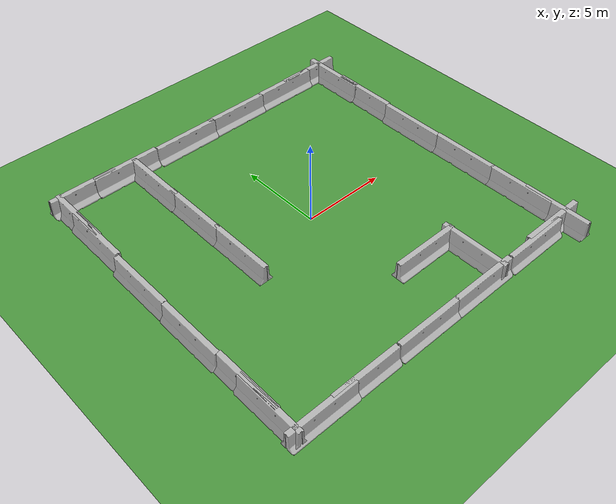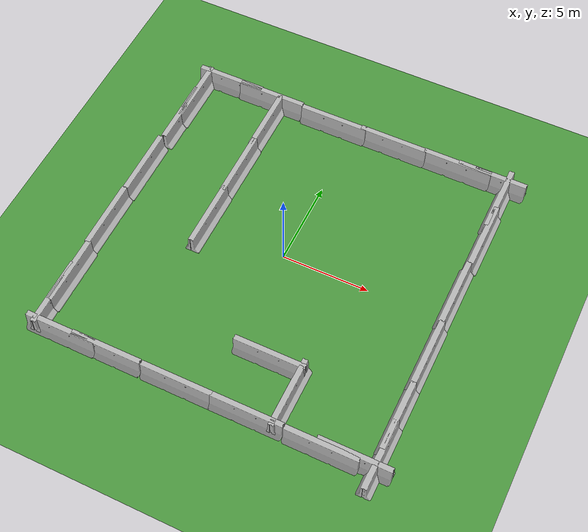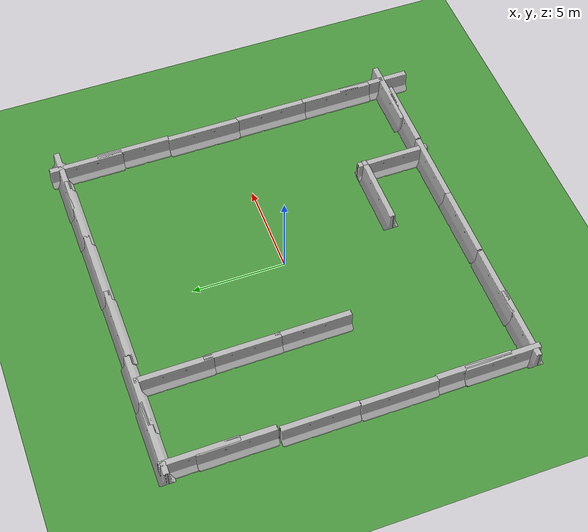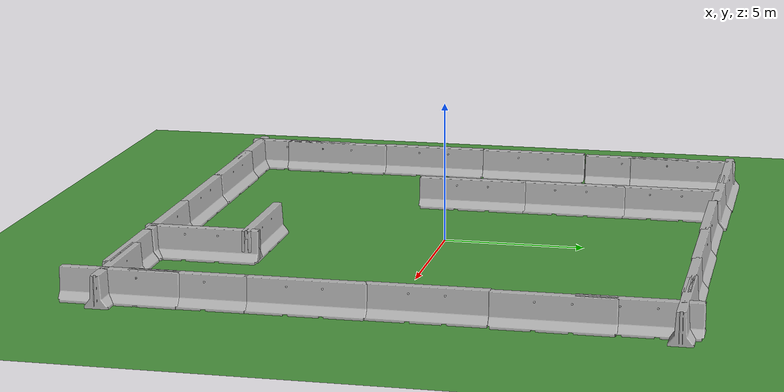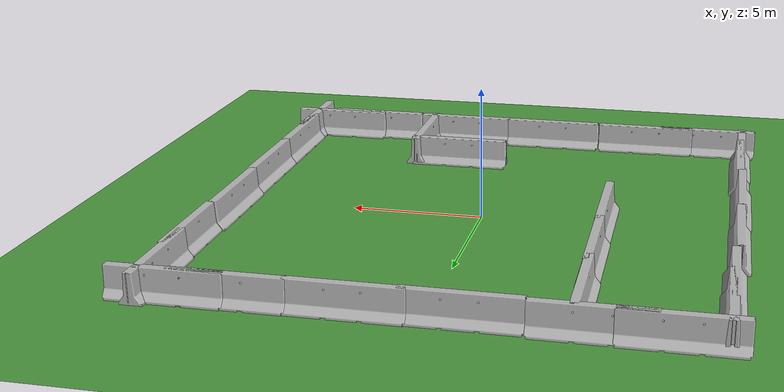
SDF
<sdf version="1.7">
 <world name="default">
  <light name="sun" type="directional">
   <pose>0 0 10 0 -0 0</pose>
   <diffuse>0.8 0.8 0.8 1</diffuse>
   <specular>0.2 0.2 0.2 1</specular>
   <attenuation>
    <range>1000</range>
    <constant>0.9</constant>
    <linear>0.01</linear>
    <quadratic>0.001</quadratic>
   </attenuation>
   <direction>-0.5 0.1 -0.9</direction>
   <spot><inner_angle>0</inner_angle><outer_angle>0</outer_angle><falloff>0</falloff></spot>
  </light>
  <model name="ground_plane">
   <static>1</static>
   <link name="link">
    <collision name="collision">
     <geometry><plane><normal>0 0 1</normal><size>100 100</size></plane></geometry>
     <surface><friction><ode><mu>100</mu><mu2>50</mu2></ode></friction></surface>
    </collision>
    <visual name="visual">
     <cast_shadows>0</cast_shadows>
     <geometry><plane><normal>0 0 1</normal><size>20 20</size></plane></geometry>
     <material>
      <script>
       <uri>model://jardim/materials/scripts</uri>
       <uri>model://jardim/materials/texture</uri>
       <name>vrc/grass</name>
      </script>
     </material>
    </visual>
   </link>
  </model>
  <gravity>0 0 -9.8</gravity>
  <magnetic_field>6e-06 2.3e-05 -4.2e-05</magnetic_field>
  <atmosphere type="adiabatic"/>
  <physics name="default_physics" default="0" type="ode">
   <max_step_size>0.001</max_step_size>
   <real_time_factor>1</real_time_factor>
   <real_time_update_rate>1000</real_time_update_rate>
  </physics>
  <scene><ambient>0.4 0.4 0.4 1</ambient><background>0.7 0.7 0.7 1</background><shadows>1</shadows></scene>
  <spherical_coordinates>
   <surface_model>EARTH_WGS84</surface_model>
   <latitude_deg>0</latitude_deg>
   <longitude_deg>0</longitude_deg>
   <elevation>0</elevation>
   <heading_deg>0</heading_deg>
  </spherical_coordinates>
  <model name="jersey_barrier">
   <static>1</static>
   <link name="link">
    <visual name="visual">
     <geometry><mesh><uri>model://jersey_barrier/meshes/jersey_barrier.dae</uri></mesh></geometry>
    </visual>
    <collision name="upright">
     <pose>0 0 0.5715 0 -0 0</pose>
     <geometry><box><size>4.06542 0.3063 1.143</size></box></geometry>
    </collision>
    <collision name="base">
     <pose>0 0 0.032258 0 -0 0</pose>
     <geometry><box><size>4.06542 0.8107 0.064516</size></box></geometry>
    </collision>
    <collision name="base2">
     <pose>0 0 0.1 0 -0 0</pose>
     <geometry><box><size>4.06542 0.65 0.1</size></box></geometry>
    </collision>
    <collision name="base3">
     <pose>0 0 0.2 0 -0 0</pose>
     <geometry><box><size>4.06542 0.5 0.1</size></box></geometry>
    </collision>
    <collision name="left-angle">
     <pose>0 -0.224 0.2401 0.9 -0 0</pose>
     <geometry><box><size>4.06542 0.5 0.064516</size></box></geometry>
    </collision>
    <collision name="right-angle">
     <pose>0 0.224 0.2401 -0.9 0 0</pose>
     <geometry><box><size>4.06542 0.5 0.064516</size></box></geometry>
    </collision>
   </link>
   <pose>-5.29386 9.38918 0 0 -0 0</pose>
  </model>
  <model name="jersey_barrier_clone">
   <static>1</static>
   <link name="link">
    <visual name="visual">
     <geometry><mesh><uri>model://jersey_barrier/meshes/jersey_barrier.dae</uri></mesh></geometry>
    </visual>
    <collision name="upright">
     <pose>0 0 0.5715 0 -0 0</pose>
     <geometry><box><size>4.06542 0.3063 1.143</size></box></geometry>
    </collision>
    <collision name="base">
     <pose>0 0 0.032258 0 -0 0</pose>
     <geometry><box><size>4.06542 0.8107 0.064516</size></box></geometry>
    </collision>
    <collision name="base2">
     <pose>0 0 0.1 0 -0 0</pose>
     <geometry><box><size>4.06542 0.65 0.1</size></box></geometry>
    </collision>
    <collision name="base3">
     <pose>0 0 0.2 0 -0 0</pose>
     <geometry><box><size>4.06542 0.5 0.1</size></box></geometry>
    </collision>
    <collision name="left-angle">
     <pose>0 -0.224 0.2401 0.9 -0 0</pose>
     <geometry><box><size>4.06542 0.5 0.064516</size></box></geometry>
    </collision>
    <collision name="right-angle">
     <pose>0 0.224 0.2401 -0.9 0 0</pose>
     <geometry><box><size>4.06542 0.5 0.064516</size></box></geometry>
    </collision>
   </link>
   <pose>-1.23089 9.28673 0 0 -0 0</pose>
  </model>
  <model name="jersey_barrier_clone_0">
   <static>1</static>
   <link name="link">
    <visual name="visual">
     <geometry><mesh><uri>model://jersey_barrier/meshes/jersey_barrier.dae</uri></mesh></geometry>
    </visual>
    <collision name="upright">
     <pose>0 0 0.5715 0 -0 0</pose>
     <geometry><box><size>4.06542 0.3063 1.143</size></box></geometry>
    </collision>
    <collision name="base">
     <pose>0 0 0.032258 0 -0 0</pose>
     <geometry><box><size>4.06542 0.8107 0.064516</size></box></geometry>
    </collision>
    <collision name="base2">
     <pose>0 0 0.1 0 -0 0</pose>
     <geometry><box><size>4.06542 0.65 0.1</size></box></geometry>
    </collision>
    <collision name="base3">
     <pose>0 0 0.2 0 -0 0</pose>
     <geometry><box><size>4.06542 0.5 0.1</size></box></geometry>
    </collision>
    <collision name="left-angle">
     <pose>0 -0.224 0.2401 0.9 -0 0</pose>
     <geometry><box><size>4.06542 0.5 0.064516</size></box></geometry>
    </collision>
    <collision name="right-angle">
     <pose>0 0.224 0.2401 -0.9 0 0</pose>
     <geometry><box><size>4.06542 0.5 0.064516</size></box></geometry>
    </collision>
   </link>
   <pose>2.47545 9.3304 0 0 -0 0</pose>
  </model>
  <model name="jersey_barrier_clone_1">
   <static>1</static>
   <link name="link">
    <visual name="visual">
     <geometry><mesh><uri>model://jersey_barrier/meshes/jersey_barrier.dae</uri></mesh></geometry>
    </visual>
    <collision name="upright">
     <pose>0 0 0.5715 0 -0 0</pose>
     <geometry><box><size>4.06542 0.3063 1.143</size></box></geometry>
    </collision>
    <collision name="base">
     <pose>0 0 0.032258 0 -0 0</pose>
     <geometry><box><size>4.06542 0.8107 0.064516</size></box></geometry>
    </collision>
    <collision name="base2">
     <pose>0 0 0.1 0 -0 0</pose>
     <geometry><box><size>4.06542 0.65 0.1</size></box></geometry>
    </collision>
    <collision name="base3">
     <pose>0 0 0.2 0 -0 0</pose>
     <geometry><box><size>4.06542 0.5 0.1</size></box></geometry>
    </collision>
    <collision name="left-angle">
     <pose>0 -0.224 0.2401 0.9 -0 0</pose>
     <geometry><box><size>4.06542 0.5 0.064516</size></box></geometry>
    </collision>
    <collision name="right-angle">
     <pose>0 0.224 0.2401 -0.9 0 0</pose>
     <geometry><box><size>4.06542 0.5 0.064516</size></box></geometry>
    </collision>
   </link>
   <pose>6.37079 9.36014 0 0 -0 0</pose>
  </model>
  <model name="jersey_barrier_clone_3">
   <static>1</static>
   <link name="link">
    <visual name="visual">
     <geometry><mesh><uri>model://jersey_barrier/meshes/jersey_barrier.dae</uri></mesh></geometry>
    </visual>
    <collision name="upright">
     <pose>0 0 0.5715 0 -0 0</pose>
     <geometry><box><size>4.06542 0.3063 1.143</size></box></geometry>
    </collision>
    <collision name="base">
     <pose>0 0 0.032258 0 -0 0</pose>
     <geometry><box><size>4.06542 0.8107 0.064516</size></box></geometry>
    </collision>
    <collision name="base2">
     <pose>0 0 0.1 0 -0 0</pose>
     <geometry><box><size>4.06542 0.65 0.1</size></box></geometry>
    </collision>
    <collision name="base3">
     <pose>0 0 0.2 0 -0 0</pose>
     <geometry><box><size>4.06542 0.5 0.1</size></box></geometry>
    </collision>
    <collision name="left-angle">
     <pose>0 -0.224 0.2401 0.9 -0 0</pose>
     <geometry><box><size>4.06542 0.5 0.064516</size></box></geometry>
    </collision>
    <collision name="right-angle">
     <pose>0 0.224 0.2401 -0.9 0 0</pose>
     <geometry><box><size>4.06542 0.5 0.064516</size></box></geometry>
    </collision>
   </link>
   <pose>9.44656 5.35522 0 0 0 -1.56865</pose>
  </model>
  <model name="jersey_barrier_clone_3_clone">
   <static>1</static>
   <link name="link">
    <visual name="visual">
     <geometry><mesh><uri>model://jersey_barrier/meshes/jersey_barrier.dae</uri></mesh></geometry>
    </visual>
    <collision name="upright">
     <pose>0 0 0.5715 0 -0 0</pose>
     <geometry><box><size>4.06542 0.3063 1.143</size></box></geometry>
    </collision>
    <collision name="base">
     <pose>0 0 0.032258 0 -0 0</pose>
     <geometry><box><size>4.06542 0.8107 0.064516</size></box></geometry>
    </collision>
    <collision name="base2">
     <pose>0 0 0.1 0 -0 0</pose>
     <geometry><box><size>4.06542 0.65 0.1</size></box></geometry>
    </collision>
    <collision name="base3">
     <pose>0 0 0.2 0 -0 0</pose>
     <geometry><box><size>4.06542 0.5 0.1</size></box></geometry>
    </collision>
    <collision name="left-angle">
     <pose>0 -0.224 0.2401 0.9 -0 0</pose>
     <geometry><box><size>4.06542 0.5 0.064516</size></box></geometry>
    </collision>
    <collision name="right-angle">
     <pose>0 0.224 0.2401 -0.9 0 0</pose>
     <geometry><box><size>4.06542 0.5 0.064516</size></box></geometry>
    </collision>
   </link>
   <pose>9.3727 1.33119 0 0 0 -1.56865</pose>
  </model>
  <model name="jersey_barrier_clone_3_clone_0">
   <static>1</static>
   <link name="link">
    <visual name="visual">
     <geometry><mesh><uri>model://jersey_barrier/meshes/jersey_barrier.dae</uri></mesh></geometry>
    </visual>
    <collision name="upright">
     <pose>0 0 0.5715 0 -0 0</pose>
     <geometry><box><size>4.06542 0.3063 1.143</size></box></geometry>
    </collision>
    <collision name="base">
     <pose>0 0 0.032258 0 -0 0</pose>
     <geometry><box><size>4.06542 0.8107 0.064516</size></box></geometry>
    </collision>
    <collision name="base2">
     <pose>0 0 0.1 0 -0 0</pose>
     <geometry><box><size>4.06542 0.65 0.1</size></box></geometry>
    </collision>
    <collision name="base3">
     <pose>0 0 0.2 0 -0 0</pose>
     <geometry><box><size>4.06542 0.5 0.1</size></box></geometry>
    </collision>
    <collision name="left-angle">
     <pose>0 -0.224 0.2401 0.9 -0 0</pose>
     <geometry><box><size>4.06542 0.5 0.064516</size></box></geometry>
    </collision>
    <collision name="right-angle">
     <pose>0 0.224 0.2401 -0.9 0 0</pose>
     <geometry><box><size>4.06542 0.5 0.064516</size></box></geometry>
    </collision>
   </link>
   <pose>9.4315 -2.6268 0 0 0 -1.56865</pose>
  </model>
  <model name="jersey_barrier_clone_3_clone_1">
   <static>1</static>
   <link name="link">
    <visual name="visual">
     <geometry><mesh><uri>model://jersey_barrier/meshes/jersey_barrier.dae</uri></mesh></geometry>
    </visual>
    <collision name="upright">
     <pose>0 0 0.5715 0 -0 0</pose>
     <geometry><box><size>4.06542 0.3063 1.143</size></box></geometry>
    </collision>
    <collision name="base">
     <pose>0 0 0.032258 0 -0 0</pose>
     <geometry><box><size>4.06542 0.8107 0.064516</size></box></geometry>
    </collision>
    <collision name="base2">
     <pose>0 0 0.1 0 -0 0</pose>
     <geometry><box><size>4.06542 0.65 0.1</size></box></geometry>
    </collision>
    <collision name="base3">
     <pose>0 0 0.2 0 -0 0</pose>
     <geometry><box><size>4.06542 0.5 0.1</size></box></geometry>
    </collision>
    <collision name="left-angle">
     <pose>0 -0.224 0.2401 0.9 -0 0</pose>
     <geometry><box><size>4.06542 0.5 0.064516</size></box></geometry>
    </collision>
    <collision name="right-angle">
     <pose>0 0.224 0.2401 -0.9 0 0</pose>
     <geometry><box><size>4.06542 0.5 0.064516</size></box></geometry>
    </collision>
   </link>
   <pose>9.44969 -6.53485 0 0 0 -1.56865</pose>
  </model>
  <model name="jersey_barrier_clone_2_clone">
   <static>1</static>
   <link name="link">
    <visual name="visual">
     <geometry><mesh><uri>model://jersey_barrier/meshes/jersey_barrier.dae</uri></mesh></geometry>
    </visual>
    <collision name="upright">
     <pose>0 0 0.5715 0 -0 0</pose>
     <geometry><box><size>4.06542 0.3063 1.143</size></box></geometry>
    </collision>
    <collision name="base">
     <pose>0 0 0.032258 0 -0 0</pose>
     <geometry><box><size>4.06542 0.8107 0.064516</size></box></geometry>
    </collision>
    <collision name="base2">
     <pose>0 0 0.1 0 -0 0</pose>
     <geometry><box><size>4.06542 0.65 0.1</size></box></geometry>
    </collision>
    <collision name="base3">
     <pose>0 0 0.2 0 -0 0</pose>
     <geometry><box><size>4.06542 0.5 0.1</size></box></geometry>
    </collision>
    <collision name="left-angle">
     <pose>0 -0.224 0.2401 0.9 -0 0</pose>
     <geometry><box><size>4.06542 0.5 0.064516</size></box></geometry>
    </collision>
    <collision name="right-angle">
     <pose>0 0.224 0.2401 -0.9 0 0</pose>
     <geometry><box><size>4.06542 0.5 0.064516</size></box></geometry>
    </collision>
   </link>
   <pose>6.70657 -9.54347 0 0 -0 0</pose>
  </model>
  <model name="jersey_barrier_clone_2_clone_0">
   <static>1</static>
   <link name="link">
    <visual name="visual">
     <geometry><mesh><uri>model://jersey_barrier/meshes/jersey_barrier.dae</uri></mesh></geometry>
    </visual>
    <collision name="upright">
     <pose>0 0 0.5715 0 -0 0</pose>
     <geometry><box><size>4.06542 0.3063 1.143</size></box></geometry>
    </collision>
    <collision name="base">
     <pose>0 0 0.032258 0 -0 0</pose>
     <geometry><box><size>4.06542 0.8107 0.064516</size></box></geometry>
    </collision>
    <collision name="base2">
     <pose>0 0 0.1 0 -0 0</pose>
     <geometry><box><size>4.06542 0.65 0.1</size></box></geometry>
    </collision>
    <collision name="base3">
     <pose>0 0 0.2 0 -0 0</pose>
     <geometry><box><size>4.06542 0.5 0.1</size></box></geometry>
    </collision>
    <collision name="left-angle">
     <pose>0 -0.224 0.2401 0.9 -0 0</pose>
     <geometry><box><size>4.06542 0.5 0.064516</size></box></geometry>
    </collision>
    <collision name="right-angle">
     <pose>0 0.224 0.2401 -0.9 0 0</pose>
     <geometry><box><size>4.06542 0.5 0.064516</size></box></geometry>
    </collision>
   </link>
   <pose>2.59616 -9.50928 0 0 -0 0</pose>
  </model>
  <model name="jersey_barrier_clone_2_clone_1">
   <static>1</static>
   <link name="link">
    <visual name="visual">
     <geometry><mesh><uri>model://jersey_barrier/meshes/jersey_barrier.dae</uri></mesh></geometry>
    </visual>
    <collision name="upright">
     <pose>0 0 0.5715 0 -0 0</pose>
     <geometry><box><size>4.06542 0.3063 1.143</size></box></geometry>
    </collision>
    <collision name="base">
     <pose>0 0 0.032258 0 -0 0</pose>
     <geometry><box><size>4.06542 0.8107 0.064516</size></box></geometry>
    </collision>
    <collision name="base2">
     <pose>0 0 0.1 0 -0 0</pose>
     <geometry><box><size>4.06542 0.65 0.1</size></box></geometry>
    </collision>
    <collision name="base3">
     <pose>0 0 0.2 0 -0 0</pose>
     <geometry><box><size>4.06542 0.5 0.1</size></box></geometry>
    </collision>
    <collision name="left-angle">
     <pose>0 -0.224 0.2401 0.9 -0 0</pose>
     <geometry><box><size>4.06542 0.5 0.064516</size></box></geometry>
    </collision>
    <collision name="right-angle">
     <pose>0 0.224 0.2401 -0.9 0 0</pose>
     <geometry><box><size>4.06542 0.5 0.064516</size></box></geometry>
    </collision>
   </link>
   <pose>-1.33414 -9.50852 0 0 -0 0</pose>
  </model>
  <model name="jersey_barrier_clone_2_clone_2">
   <static>1</static>
   <link name="link">
    <visual name="visual">
     <geometry><mesh><uri>model://jersey_barrier/meshes/jersey_barrier.dae</uri></mesh></geometry>
    </visual>
    <collision name="upright">
     <pose>0 0 0.5715 0 -0 0</pose>
     <geometry><box><size>4.06542 0.3063 1.143</size></box></geometry>
    </collision>
    <collision name="base">
     <pose>0 0 0.032258 0 -0 0</pose>
     <geometry><box><size>4.06542 0.8107 0.064516</size></box></geometry>
    </collision>
    <collision name="base2">
     <pose>0 0 0.1 0 -0 0</pose>
     <geometry><box><size>4.06542 0.65 0.1</size></box></geometry>
    </collision>
    <collision name="base3">
     <pose>0 0 0.2 0 -0 0</pose>
     <geometry><box><size>4.06542 0.5 0.1</size></box></geometry>
    </collision>
    <collision name="left-angle">
     <pose>0 -0.224 0.2401 0.9 -0 0</pose>
     <geometry><box><size>4.06542 0.5 0.064516</size></box></geometry>
    </collision>
    <collision name="right-angle">
     <pose>0 0.224 0.2401 -0.9 0 0</pose>
     <geometry><box><size>4.06542 0.5 0.064516</size></box></geometry>
    </collision>
   </link>
   <pose>-5.44605 -9.49634 0 0 -0 0</pose>
  </model>
  <model name="jersey_barrier_clone_3_clone_1_clone">
   <static>1</static>
   <link name="link">
    <visual name="visual">
     <geometry><mesh><uri>model://jersey_barrier/meshes/jersey_barrier.dae</uri></mesh></geometry>
    </visual>
    <collision name="upright">
     <pose>0 0 0.5715 0 -0 0</pose>
     <geometry><box><size>4.06542 0.3063 1.143</size></box></geometry>
    </collision>
    <collision name="base">
     <pose>0 0 0.032258 0 -0 0</pose>
     <geometry><box><size>4.06542 0.8107 0.064516</size></box></geometry>
    </collision>
    <collision name="base2">
     <pose>0 0 0.1 0 -0 0</pose>
     <geometry><box><size>4.06542 0.65 0.1</size></box></geometry>
    </collision>
    <collision name="base3">
     <pose>0 0 0.2 0 -0 0</pose>
     <geometry><box><size>4.06542 0.5 0.1</size></box></geometry>
    </collision>
    <collision name="left-angle">
     <pose>0 -0.224 0.2401 0.9 -0 0</pose>
     <geometry><box><size>4.06542 0.5 0.064516</size></box></geometry>
    </collision>
    <collision name="right-angle">
     <pose>0 0.224 0.2401 -0.9 0 0</pose>
     <geometry><box><size>4.06542 0.5 0.064516</size></box></geometry>
    </collision>
   </link>
   <pose>-9.54289 -6.33149 0 0 0 -1.56865</pose>
  </model>
  <model name="jersey_barrier_clone_3_clone_1_clone_0">
   <static>1</static>
   <link name="link">
    <visual name="visual">
     <geometry><mesh><uri>model://jersey_barrier/meshes/jersey_barrier.dae</uri></mesh></geometry>
    </visual>
    <collision name="upright">
     <pose>0 0 0.5715 0 -0 0</pose>
     <geometry><box><size>4.06542 0.3063 1.143</size></box></geometry>
    </collision>
    <collision name="base">
     <pose>0 0 0.032258 0 -0 0</pose>
     <geometry><box><size>4.06542 0.8107 0.064516</size></box></geometry>
    </collision>
    <collision name="base2">
     <pose>0 0 0.1 0 -0 0</pose>
     <geometry><box><size>4.06542 0.65 0.1</size></box></geometry>
    </collision>
    <collision name="base3">
     <pose>0 0 0.2 0 -0 0</pose>
     <geometry><box><size>4.06542 0.5 0.1</size></box></geometry>
    </collision>
    <collision name="left-angle">
     <pose>0 -0.224 0.2401 0.9 -0 0</pose>
     <geometry><box><size>4.06542 0.5 0.064516</size></box></geometry>
    </collision>
    <collision name="right-angle">
     <pose>0 0.224 0.2401 -0.9 0 0</pose>
     <geometry><box><size>4.06542 0.5 0.064516</size></box></geometry>
    </collision>
   </link>
   <pose>-9.6221 -2.35336 0 0 0 -1.56865</pose>
  </model>
  <model name="jersey_barrier_clone_3_clone_1_clone_1">
   <static>1</static>
   <link name="link">
    <visual name="visual">
     <geometry><mesh><uri>model://jersey_barrier/meshes/jersey_barrier.dae</uri></mesh></geometry>
    </visual>
    <collision name="upright">
     <pose>0 0 0.5715 0 -0 0</pose>
     <geometry><box><size>4.06542 0.3063 1.143</size></box></geometry>
    </collision>
    <collision name="base">
     <pose>0 0 0.032258 0 -0 0</pose>
     <geometry><box><size>4.06542 0.8107 0.064516</size></box></geometry>
    </collision>
    <collision name="base2">
     <pose>0 0 0.1 0 -0 0</pose>
     <geometry><box><size>4.06542 0.65 0.1</size></box></geometry>
    </collision>
    <collision name="base3">
     <pose>0 0 0.2 0 -0 0</pose>
     <geometry><box><size>4.06542 0.5 0.1</size></box></geometry>
    </collision>
    <collision name="left-angle">
     <pose>0 -0.224 0.2401 0.9 -0 0</pose>
     <geometry><box><size>4.06542 0.5 0.064516</size></box></geometry>
    </collision>
    <collision name="right-angle">
     <pose>0 0.224 0.2401 -0.9 0 0</pose>
     <geometry><box><size>4.06542 0.5 0.064516</size></box></geometry>
    </collision>
   </link>
   <pose>-9.58952 1.69745 0 0 0 -1.56865</pose>
  </model>
  <model name="jersey_barrier_clone_3_clone_1_clone_2">
   <static>1</static>
   <link name="link">
    <visual name="visual">
     <geometry><mesh><uri>model://jersey_barrier/meshes/jersey_barrier.dae</uri></mesh></geometry>
    </visual>
    <collision name="upright">
     <pose>0 0 0.5715 0 -0 0</pose>
     <geometry><box><size>4.06542 0.3063 1.143</size></box></geometry>
    </collision>
    <collision name="base">
     <pose>0 0 0.032258 0 -0 0</pose>
     <geometry><box><size>4.06542 0.8107 0.064516</size></box></geometry>
    </collision>
    <collision name="base2">
     <pose>0 0 0.1 0 -0 0</pose>
     <geometry><box><size>4.06542 0.65 0.1</size></box></geometry>
    </collision>
    <collision name="base3">
     <pose>0 0 0.2 0 -0 0</pose>
     <geometry><box><size>4.06542 0.5 0.1</size></box></geometry>
    </collision>
    <collision name="left-angle">
     <pose>0 -0.224 0.2401 0.9 -0 0</pose>
     <geometry><box><size>4.06542 0.5 0.064516</size></box></geometry>
    </collision>
    <collision name="right-angle">
     <pose>0 0.224 0.2401 -0.9 0 0</pose>
     <geometry><box><size>4.06542 0.5 0.064516</size></box></geometry>
    </collision>
   </link>
   <pose>-9.44715 5.83721 0 0 0 -1.56865</pose>
  </model>
  <model name="jersey_barrier_clone_3_clone_1_clone_2_clone">
   <static>1</static>
   <link name="link">
    <visual name="visual">
     <geometry><mesh><uri>model://jersey_barrier/meshes/jersey_barrier.dae</uri></mesh></geometry>
    </visual>
    <collision name="upright">
     <pose>0 0 0.5715 0 -0 0</pose>
     <geometry><box><size>4.06542 0.3063 1.143</size></box></geometry>
    </collision>
    <collision name="base">
     <pose>0 0 0.032258 0 -0 0</pose>
     <geometry><box><size>4.06542 0.8107 0.064516</size></box></geometry>
    </collision>
    <collision name="base2">
     <pose>0 0 0.1 0 -0 0</pose>
     <geometry><box><size>4.06542 0.65 0.1</size></box></geometry>
    </collision>
    <collision name="base3">
     <pose>0 0 0.2 0 -0 0</pose>
     <geometry><box><size>4.06542 0.5 0.1</size></box></geometry>
    </collision>
    <collision name="left-angle">
     <pose>0 -0.224 0.2401 0.9 -0 0</pose>
     <geometry><box><size>4.06542 0.5 0.064516</size></box></geometry>
    </collision>
    <collision name="right-angle">
     <pose>0 0.224 0.2401 -0.9 0 0</pose>
     <geometry><box><size>4.06542 0.5 0.064516</size></box></geometry>
    </collision>
   </link>
   <pose>-4.72152 7.44573 0 0 0 -1.56865</pose>
  </model>
  <model name="jersey_barrier_clone_3_clone_1_clone_2_clone_0">
   <static>1</static>
   <link name="link">
    <visual name="visual">
     <geometry><mesh><uri>model://jersey_barrier/meshes/jersey_barrier.dae</uri></mesh></geometry>
    </visual>
    <collision name="upright">
     <pose>0 0 0.5715 0 -0 0</pose>
     <geometry><box><size>4.06542 0.3063 1.143</size></box></geometry>
    </collision>
    <collision name="base">
     <pose>0 0 0.032258 0 -0 0</pose>
     <geometry><box><size>4.06542 0.8107 0.064516</size></box></geometry>
    </collision>
    <collision name="base2">
     <pose>0 0 0.1 0 -0 0</pose>
     <geometry><box><size>4.06542 0.65 0.1</size></box></geometry>
    </collision>
    <collision name="base3">
     <pose>0 0 0.2 0 -0 0</pose>
     <geometry><box><size>4.06542 0.5 0.1</size></box></geometry>
    </collision>
    <collision name="left-angle">
     <pose>0 -0.224 0.2401 0.9 -0 0</pose>
     <geometry><box><size>4.06542 0.5 0.064516</size></box></geometry>
    </collision>
    <collision name="right-angle">
     <pose>0 0.224 0.2401 -0.9 0 0</pose>
     <geometry><box><size>4.06542 0.5 0.064516</size></box></geometry>
    </collision>
   </link>
   <pose>-4.68157 3.89742 0 0 0 -1.56865</pose>
  </model>
  <model name="jersey_barrier_clone_3_clone_1_clone_2_clone_1">
   <static>1</static>
   <link name="link">
    <visual name="visual">
     <geometry><mesh><uri>model://jersey_barrier/meshes/jersey_barrier.dae</uri></mesh></geometry>
    </visual>
    <collision name="upright">
     <pose>0 0 0.5715 0 -0 0</pose>
     <geometry><box><size>4.06542 0.3063 1.143</size></box></geometry>
    </collision>
    <collision name="base">
     <pose>0 0 0.032258 0 -0 0</pose>
     <geometry><box><size>4.06542 0.8107 0.064516</size></box></geometry>
    </collision>
    <collision name="base2">
     <pose>0 0 0.1 0 -0 0</pose>
     <geometry><box><size>4.06542 0.65 0.1</size></box></geometry>
    </collision>
    <collision name="base3">
     <pose>0 0 0.2 0 -0 0</pose>
     <geometry><box><size>4.06542 0.5 0.1</size></box></geometry>
    </collision>
    <collision name="left-angle">
     <pose>0 -0.224 0.2401 0.9 -0 0</pose>
     <geometry><box><size>4.06542 0.5 0.064516</size></box></geometry>
    </collision>
    <collision name="right-angle">
     <pose>0 0.224 0.2401 -0.9 0 0</pose>
     <geometry><box><size>4.06542 0.5 0.064516</size></box></geometry>
    </collision>
   </link>
   <pose>-4.65382 0.161057 0 0 0 -1.56865</pose>
  </model>
  <model name="jersey_barrier_clone_3_clone_1_clone_2_clone_2">
   <static>1</static>
   <link name="link">
    <visual name="visual">
     <geometry><mesh><uri>model://jersey_barrier/meshes/jersey_barrier.dae</uri></mesh></geometry>
    </visual>
    <collision name="upright">
     <pose>0 0 0.5715 0 -0 0</pose>
     <geometry><box><size>4.06542 0.3063 1.143</size></box></geometry>
    </collision>
    <collision name="base">
     <pose>0 0 0.032258 0 -0 0</pose>
     <geometry><box><size>4.06542 0.8107 0.064516</size></box></geometry>
    </collision>
    <collision name="base2">
     <pose>0 0 0.1 0 -0 0</pose>
     <geometry><box><size>4.06542 0.65 0.1</size></box></geometry>
    </collision>
    <collision name="base3">
     <pose>0 0 0.2 0 -0 0</pose>
     <geometry><box><size>4.06542 0.5 0.1</size></box></geometry>
    </collision>
    <collision name="left-angle">
     <pose>0 -0.224 0.2401 0.9 -0 0</pose>
     <geometry><box><size>4.06542 0.5 0.064516</size></box></geometry>
    </collision>
    <collision name="right-angle">
     <pose>0 0.224 0.2401 -0.9 0 0</pose>
     <geometry><box><size>4.06542 0.5 0.064516</size></box></geometry>
    </collision>
   </link>
   <pose>4.04351 -7.75556 0 0 0 -1.56865</pose>
  </model>
  <model name="jersey_barrier_clone_2">
   <static>1</static>
   <link name="link">
    <visual name="visual">
     <geometry><mesh><uri>model://jersey_barrier/meshes/jersey_barrier.dae</uri></mesh></geometry>
    </visual>
    <collision name="upright">
     <pose>0 0 0.5715 0 -0 0</pose>
     <geometry><box><size>4.06542 0.3063 1.143</size></box></geometry>
    </collision>
    <collision name="base">
     <pose>0 0 0.032258 0 -0 0</pose>
     <geometry><box><size>4.06542 0.8107 0.064516</size></box></geometry>
    </collision>
    <collision name="base2">
     <pose>0 0 0.1 0 -0 0</pose>
     <geometry><box><size>4.06542 0.65 0.1</size></box></geometry>
    </collision>
    <collision name="base3">
     <pose>0 0 0.2 0 -0 0</pose>
     <geometry><box><size>4.06542 0.5 0.1</size></box></geometry>
    </collision>
    <collision name="left-angle">
     <pose>0 -0.224 0.2401 0.9 -0 0</pose>
     <geometry><box><size>4.06542 0.5 0.064516</size></box></geometry>
    </collision>
    <collision name="right-angle">
     <pose>0 0.224 0.2401 -0.9 0 0</pose>
     <geometry><box><size>4.06542 0.5 0.064516</size></box></geometry>
    </collision>
   </link>
   <pose>-7.96814 9.42505 0 0 -0 0</pose>
  </model>
  <model name="jersey_barrier_clone_3_clone_1_clone_2_clone_3">
   <static>1</static>
   <link name="link">
    <visual name="visual">
     <geometry><mesh><uri>model://jersey_barrier/meshes/jersey_barrier.dae</uri></mesh></geometry>
    </visual>
    <collision name="upright">
     <pose>0 0 0.5715 0 -0 0</pose>
     <geometry><box><size>4.06542 0.3063 1.143</size></box></geometry>
    </collision>
    <collision name="base">
     <pose>0 0 0.032258 0 -0 0</pose>
     <geometry><box><size>4.06542 0.8107 0.064516</size></box></geometry>
    </collision>
    <collision name="base2">
     <pose>0 0 0.1 0 -0 0</pose>
     <geometry><box><size>4.06542 0.65 0.1</size></box></geometry>
    </collision>
    <collision name="base3">
     <pose>0 0 0.2 0 -0 0</pose>
     <geometry><box><size>4.06542 0.5 0.1</size></box></geometry>
    </collision>
    <collision name="left-angle">
     <pose>0 -0.224 0.2401 0.9 -0 0</pose>
     <geometry><box><size>4.06542 0.5 0.064516</size></box></geometry>
    </collision>
    <collision name="right-angle">
     <pose>0 0.224 0.2401 -0.9 0 0</pose>
     <geometry><box><size>4.06542 0.5 0.064516</size></box></geometry>
    </collision>
   </link>
   <pose>-9.39871 7.6259 0 0 0 -1.56865</pose>
  </model>
  <model name="jersey_barrier_clone_3_clone_2">
   <static>1</static>
   <link name="link">
    <visual name="visual">
     <geometry><mesh><uri>model://jersey_barrier/meshes/jersey_barrier.dae</uri></mesh></geometry>
    </visual>
    <collision name="upright">
     <pose>0 0 0.5715 0 -0 0</pose>
     <geometry><box><size>4.06542 0.3063 1.143</size></box></geometry>
    </collision>
    <collision name="base">
     <pose>0 0 0.032258 0 -0 0</pose>
     <geometry><box><size>4.06542 0.8107 0.064516</size></box></geometry>
    </collision>
    <collision name="base2">
     <pose>0 0 0.1 0 -0 0</pose>
     <geometry><box><size>4.06542 0.65 0.1</size></box></geometry>
    </collision>
    <collision name="base3">
     <pose>0 0 0.2 0 -0 0</pose>
     <geometry><box><size>4.06542 0.5 0.1</size></box></geometry>
    </collision>
    <collision name="left-angle">
     <pose>0 -0.224 0.2401 0.9 -0 0</pose>
     <geometry><box><size>4.06542 0.5 0.064516</size></box></geometry>
    </collision>
    <collision name="right-angle">
     <pose>0 0.224 0.2401 -0.9 0 0</pose>
     <geometry><box><size>4.06542 0.5 0.064516</size></box></geometry>
    </collision>
   </link>
   <pose>9.36437 8.02023 0 0 0 -1.56865</pose>
  </model>
  <model name="jersey_barrier_clone_1_clone">
   <static>1</static>
   <link name="link">
    <visual name="visual">
     <geometry><mesh><uri>model://jersey_barrier/meshes/jersey_barrier.dae</uri></mesh></geometry>
    </visual>
    <collision name="upright">
     <pose>0 0 0.5715 0 -0 0</pose>
     <geometry><box><size>4.06542 0.3063 1.143</size></box></geometry>
    </collision>
    <collision name="base">
     <pose>0 0 0.032258 0 -0 0</pose>
     <geometry><box><size>4.06542 0.8107 0.064516</size></box></geometry>
    </collision>
    <collision name="base2">
     <pose>0 0 0.1 0 -0 0</pose>
     <geometry><box><size>4.06542 0.65 0.1</size></box></geometry>
    </collision>
    <collision name="base3">
     <pose>0 0 0.2 0 -0 0</pose>
     <geometry><box><size>4.06542 0.5 0.1</size></box></geometry>
    </collision>
    <collision name="left-angle">
     <pose>0 -0.224 0.2401 0.9 -0 0</pose>
     <geometry><box><size>4.06542 0.5 0.064516</size></box></geometry>
    </collision>
    <collision name="right-angle">
     <pose>0 0.224 0.2401 -0.9 0 0</pose>
     <geometry><box><size>4.06542 0.5 0.064516</size></box></geometry>
    </collision>
   </link>
   <pose>8.42823 9.39944 0 0 -0 0</pose>
  </model>
  <model name="jersey_barrier_clone_2_clone_clone">
   <static>1</static>
   <link name="link">
    <visual name="visual">
     <geometry><mesh><uri>model://jersey_barrier/meshes/jersey_barrier.dae</uri></mesh></geometry>
    </visual>
    <collision name="upright">
     <pose>0 0 0.5715 0 -0 0</pose>
     <geometry><box><size>4.06542 0.3063 1.143</size></box></geometry>
    </collision>
    <collision name="base">
     <pose>0 0 0.032258 0 -0 0</pose>
     <geometry><box><size>4.06542 0.8107 0.064516</size></box></geometry>
    </collision>
    <collision name="base2">
     <pose>0 0 0.1 0 -0 0</pose>
     <geometry><box><size>4.06542 0.65 0.1</size></box></geometry>
    </collision>
    <collision name="base3">
     <pose>0 0 0.2 0 -0 0</pose>
     <geometry><box><size>4.06542 0.5 0.1</size></box></geometry>
    </collision>
    <collision name="left-angle">
     <pose>0 -0.224 0.2401 0.9 -0 0</pose>
     <geometry><box><size>4.06542 0.5 0.064516</size></box></geometry>
    </collision>
    <collision name="right-angle">
     <pose>0 0.224 0.2401 -0.9 0 0</pose>
     <geometry><box><size>4.06542 0.5 0.064516</size></box></geometry>
    </collision>
   </link>
   <pose>8.37886 -9.35265 0 0 -0 0</pose>
  </model>
  <model name="jersey_barrier_clone_3_clone_1_clone_3">
   <static>1</static>
   <link name="link">
    <visual name="visual">
     <geometry><mesh><uri>model://jersey_barrier/meshes/jersey_barrier.dae</uri></mesh></geometry>
    </visual>
    <collision name="upright">
     <pose>0 0 0.5715 0 -0 0</pose>
     <geometry><box><size>4.06542 0.3063 1.143</size></box></geometry>
    </collision>
    <collision name="base">
     <pose>0 0 0.032258 0 -0 0</pose>
     <geometry><box><size>4.06542 0.8107 0.064516</size></box></geometry>
    </collision>
    <collision name="base2">
     <pose>0 0 0.1 0 -0 0</pose>
     <geometry><box><size>4.06542 0.65 0.1</size></box></geometry>
    </collision>
    <collision name="base3">
     <pose>0 0 0.2 0 -0 0</pose>
     <geometry><box><size>4.06542 0.5 0.1</size></box></geometry>
    </collision>
    <collision name="left-angle">
     <pose>0 -0.224 0.2401 0.9 -0 0</pose>
     <geometry><box><size>4.06542 0.5 0.064516</size></box></geometry>
    </collision>
    <collision name="right-angle">
     <pose>0 0.224 0.2401 -0.9 0 0</pose>
     <geometry><box><size>4.06542 0.5 0.064516</size></box></geometry>
    </collision>
   </link>
   <pose>9.48087 -8.81422 0 0 0 -1.56865</pose>
  </model>
  <model name="jersey_barrier_clone_2_clone_2_clone">
   <static>1</static>
   <link name="link">
    <visual name="visual">
     <geometry><mesh><uri>model://jersey_barrier/meshes/jersey_barrier.dae</uri></mesh></geometry>
    </visual>
    <collision name="upright">
     <pose>0 0 0.5715 0 -0 0</pose>
     <geometry><box><size>4.06542 0.3063 1.143</size></box></geometry>
    </collision>
    <collision name="base">
     <pose>0 0 0.032258 0 -0 0</pose>
     <geometry><box><size>4.06542 0.8107 0.064516</size></box></geometry>
    </collision>
    <collision name="base2">
     <pose>0 0 0.1 0 -0 0</pose>
     <geometry><box><size>4.06542 0.65 0.1</size></box></geometry>
    </collision>
    <collision name="base3">
     <pose>0 0 0.2 0 -0 0</pose>
     <geometry><box><size>4.06542 0.5 0.1</size></box></geometry>
    </collision>
    <collision name="left-angle">
     <pose>0 -0.224 0.2401 0.9 -0 0</pose>
     <geometry><box><size>4.06542 0.5 0.064516</size></box></geometry>
    </collision>
    <collision name="right-angle">
     <pose>0 0.224 0.2401 -0.9 0 0</pose>
     <geometry><box><size>4.06542 0.5 0.064516</size></box></geometry>
    </collision>
   </link>
   <pose>-8.11051 -9.53575 0 0 -0 0</pose>
  </model>
  <model name="jersey_barrier_clone_3_clone_1_clone_clone">
   <static>1</static>
   <link name="link">
    <visual name="visual">
     <geometry><mesh><uri>model://jersey_barrier/meshes/jersey_barrier.dae</uri></mesh></geometry>
    </visual>
    <collision name="upright">
     <pose>0 0 0.5715 0 -0 0</pose>
     <geometry><box><size>4.06542 0.3063 1.143</size></box></geometry>
    </collision>
    <collision name="base">
     <pose>0 0 0.032258 0 -0 0</pose>
     <geometry><box><size>4.06542 0.8107 0.064516</size></box></geometry>
    </collision>
    <collision name="base2">
     <pose>0 0 0.1 0 -0 0</pose>
     <geometry><box><size>4.06542 0.65 0.1</size></box></geometry>
    </collision>
    <collision name="base3">
     <pose>0 0 0.2 0 -0 0</pose>
     <geometry><box><size>4.06542 0.5 0.1</size></box></geometry>
    </collision>
    <collision name="left-angle">
     <pose>0 -0.224 0.2401 0.9 -0 0</pose>
     <geometry><box><size>4.06542 0.5 0.064516</size></box></geometry>
    </collision>
    <collision name="right-angle">
     <pose>0 0.224 0.2401 -0.9 0 0</pose>
     <geometry><box><size>4.06542 0.5 0.064516</size></box></geometry>
    </collision>
   </link>
   <pose>-9.59213 -7.83949 0 0 0 -1.56865</pose>
  </model>
  <model name="jersey_barrier_clone_2_clone_0_clone">
   <static>1</static>
   <link name="link">
    <visual name="visual">
     <geometry><mesh><uri>model://jersey_barrier/meshes/jersey_barrier.dae</uri></mesh></geometry>
    </visual>
    <collision name="upright">
     <pose>0 0 0.5715 0 -0 0</pose>
     <geometry><box><size>4.06542 0.3063 1.143</size></box></geometry>
    </collision>
    <collision name="base">
     <pose>0 0 0.032258 0 -0 0</pose>
     <geometry><box><size>4.06542 0.8107 0.064516</size></box></geometry>
    </collision>
    <collision name="base2">
     <pose>0 0 0.1 0 -0 0</pose>
     <geometry><box><size>4.06542 0.65 0.1</size></box></geometry>
    </collision>
    <collision name="base3">
     <pose>0 0 0.2 0 -0 0</pose>
     <geometry><box><size>4.06542 0.5 0.1</size></box></geometry>
    </collision>
    <collision name="left-angle">
     <pose>0 -0.224 0.2401 0.9 -0 0</pose>
     <geometry><box><size>4.06542 0.5 0.064516</size></box></geometry>
    </collision>
    <collision name="right-angle">
     <pose>0 0.224 0.2401 -0.9 0 0</pose>
     <geometry><box><size>4.06542 0.5 0.064516</size></box></geometry>
    </collision>
   </link>
   <pose>2.20857 -6.13593 0 0 -0 0</pose>
  </model>
 </world>
</sdf>
